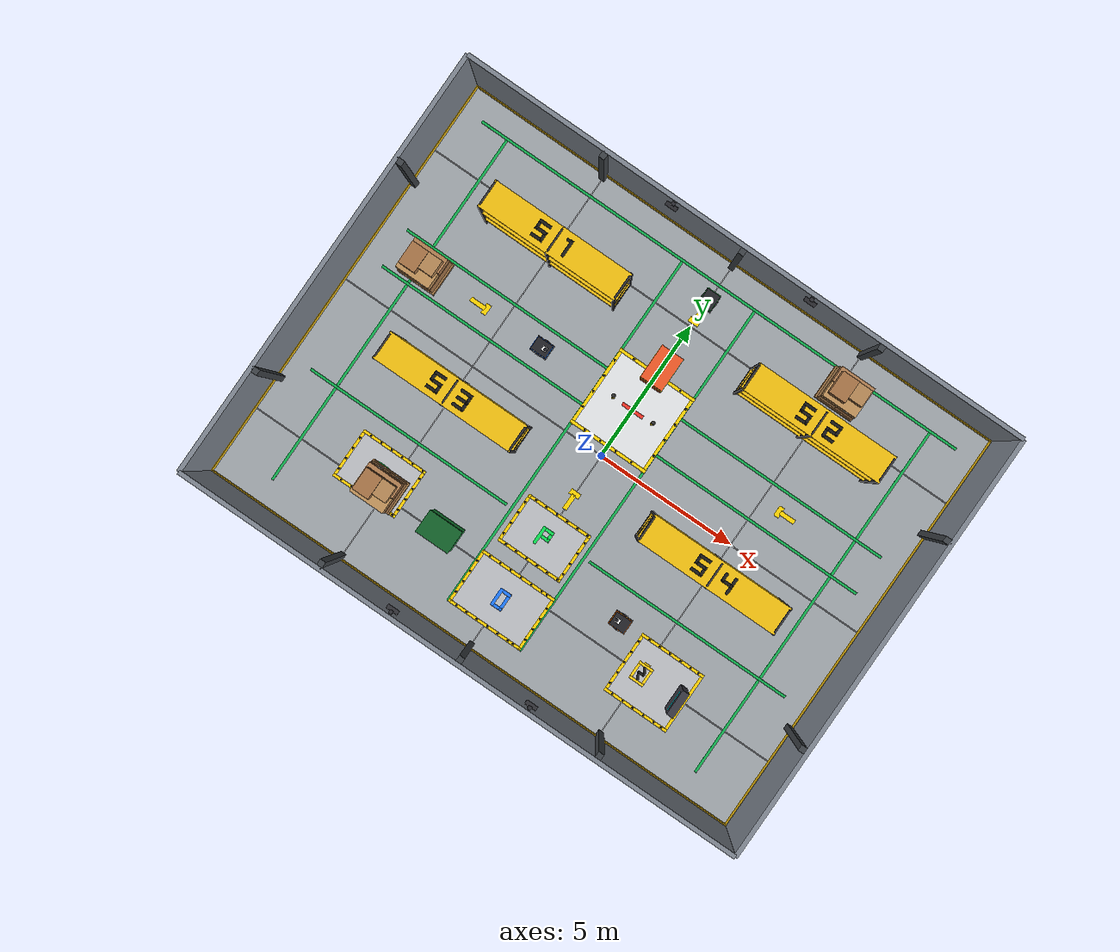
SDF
<?xml version="1.0"?>
<sdf version="1.9">
  <world name="warehouse">

    <!-- PHYSICS                                            -->
    <gravity>0 0 -9.81</gravity>
    <physics name="default_physics" type="ode">
      <max_step_size>0.001</max_step_size>
      <real_time_factor>1.0</real_time_factor>
      <real_time_update_rate>1000</real_time_update_rate>
    </physics>

    <plugin filename="gz-sim-physics-system"      name="gz::sim::systems::Physics"/>
    <plugin filename="gz-sim-sensors-system"      name="gz::sim::systems::Sensors"><render_engine>ogre2</render_engine></plugin>
    <plugin filename="gz-sim-scene-broadcaster-system" name="gz::sim::systems::SceneBroadcaster"/>
    <plugin filename="gz-sim-user-commands-system" name="gz::sim::systems::UserCommands"/>
    <plugin filename="gz-sim-contact-system"      name="gz::sim::systems::Contact"/>
    <plugin filename="gz-sim-imu-system"          name="gz::sim::systems::Imu"/>

    <!-- SCENE & LIGHTING                                  -->
    <scene>
      <ambient>0.60 0.61 0.64 1.0</ambient>
      <background>0.75 0.79 0.83 1.0</background>
      <shadows>true</shadows>
      <grid>false</grid>
    </scene>

    <!-- Primary Overhead Sun -->
    <light name="main_sun" type="directional">
      <pose>0 0 15 0 0 0</pose>
      <cast_shadows>true</cast_shadows>
      <diffuse>0.88 0.87 0.85 1.0</diffuse>
      <specular>0.28 0.28 0.28 1.0</specular>
      <direction>-0.2 0.15 -1.0</direction>
    </light>

    <!-- Warm Fill Bay Lights -->
    <light name="bay_n" type="point">
      <pose>-3.0 5.0 5.5 0 0 0</pose>
      <diffuse>0.50 0.49 0.47 1.0</diffuse>
      <attenuation><range>18</range><constant>0.4</constant><linear>0.05</linear></attenuation>
    </light>
    <light name="bay_s" type="point">
      <pose>3.0 -4.0 5.5 0 0 0</pose>
      <diffuse>0.50 0.49 0.47 1.0</diffuse>
      <attenuation><range>18</range><constant>0.4</constant><linear>0.05</linear></attenuation>
    </light>

    <!-- Wall Industrial Floodlights (Centered in wall bays at X = +-2.5m) -->
    <light name="wall_light_n1" type="point">
      <pose>-2.5 7.28 2.30 0 0 0</pose>
      <diffuse>0.38 0.38 0.35 1.0</diffuse>
      <attenuation><range>12</range><constant>0.6</constant><linear>0.08</linear></attenuation>
    </light>
    <light name="wall_light_n2" type="point">
      <pose>2.5 7.28 2.30 0 0 0</pose>
      <diffuse>0.38 0.38 0.35 1.0</diffuse>
      <attenuation><range>12</range><constant>0.6</constant><linear>0.08</linear></attenuation>
    </light>
    <light name="wall_light_s1" type="point">
      <pose>-2.5 -7.28 2.30 0 0 0</pose>
      <diffuse>0.38 0.38 0.35 1.0</diffuse>
      <attenuation><range>12</range><constant>0.6</constant><linear>0.08</linear></attenuation>
    </light>
    <light name="wall_light_s2" type="point">
      <pose>2.5 -7.28 2.30 0 0 0</pose>
      <diffuse>0.38 0.38 0.35 1.0</diffuse>
      <attenuation><range>12</range><constant>0.6</constant><linear>0.08</linear></attenuation>
    </light>

    <!-- FLOOR — Concrete with Grid Tile Lines              -->
    <model name="warehouse_floor">
      <static>true</static>
      <pose>0 0 -0.05 0 0 0</pose>
      <link name="floor_link">
        <collision name="col">
          <geometry><box><size>20.0 15.0 0.1</size></box></geometry>
          <surface><friction><ode><mu>1.0</mu><mu2>1.0</mu2></ode></friction></surface>
        </collision>
        <!-- Base Concrete Slab — slightly darker industrial grey -->
        <visual name="slab">
          <geometry><box><size>20.0 15.0 0.1</size></box></geometry>
          <material>
            <ambient>0.55 0.57 0.59 1.0</ambient>
            <diffuse>0.63 0.65 0.67 1.0</diffuse>
            <specular>0.10 0.10 0.10 1.0</specular>
          </material>
        </visual>

        <!-- === CONCRETE TILE GRID LINES (5m x 5m panels) === -->
        <!-- Horizontal lines at Y = -5, 0, +5 -->
        <visual name="grid_h1"><pose>0 -5.0 0.052 0 0 0</pose><geometry><box><size>20.0 0.03 0.002</size></box></geometry><material><ambient>0.62 0.63 0.65 1</ambient><diffuse>0.68 0.69 0.71 1</diffuse></material></visual>
        <visual name="grid_h2"><pose>0 0.0 0.052 0 0 0</pose><geometry><box><size>20.0 0.03 0.002</size></box></geometry><material><ambient>0.62 0.63 0.65 1</ambient><diffuse>0.68 0.69 0.71 1</diffuse></material></visual>
        <visual name="grid_h3"><pose>0 5.0 0.052 0 0 0</pose><geometry><box><size>20.0 0.03 0.002</size></box></geometry><material><ambient>0.62 0.63 0.65 1</ambient><diffuse>0.68 0.69 0.71 1</diffuse></material></visual>
        <!-- Vertical lines at X = -10, -5, 0, +5, +10 -->
        <visual name="grid_v1"><pose>-5.0 0 0.052 0 0 0</pose><geometry><box><size>0.03 15.0 0.002</size></box></geometry><material><ambient>0.62 0.63 0.65 1</ambient><diffuse>0.68 0.69 0.71 1</diffuse></material></visual>
        <visual name="grid_v2"><pose>0.0 0 0.052 0 0 0</pose><geometry><box><size>0.03 15.0 0.002</size></box></geometry><material><ambient>0.62 0.63 0.65 1</ambient><diffuse>0.68 0.69 0.71 1</diffuse></material></visual>
        <visual name="grid_v3"><pose>5.0 0 0.052 0 0 0</pose><geometry><box><size>0.03 15.0 0.002</size></box></geometry><material><ambient>0.62 0.63 0.65 1</ambient><diffuse>0.68 0.69 0.71 1</diffuse></material></visual>

        <!-- === GREEN SAFETY NAVIGATION LANES === -->
        <!-- Aisle 1 upper/lower -->
        <visual name="lane_a1_t"><pose>0 6.6 0.055 0 0 0</pose><geometry><box><size>18.4 0.09 0.002</size></box></geometry><material><ambient>0.04 0.52 0.22 1</ambient><diffuse>0.06 0.68 0.30 1</diffuse></material></visual>
        <visual name="lane_a1_b"><pose>0 2.4 0.055 0 0 0</pose><geometry><box><size>18.4 0.09 0.002</size></box></geometry><material><ambient>0.04 0.52 0.22 1</ambient><diffuse>0.06 0.68 0.30 1</diffuse></material></visual>
        <!-- Aisle 2 upper/lower (lower lane split around pickup P1) -->
        <visual name="lane_a2_t"><pose>0 1.0 0.055 0 0 0</pose><geometry><box><size>18.4 0.09 0.002</size></box></geometry><material><ambient>0.04 0.52 0.22 1</ambient><diffuse>0.06 0.68 0.30 1</diffuse></material></visual>
        <visual name="lane_a2_b_w"><pose>-5.4 -3.0 0.055 0 0 0</pose><geometry><box><size>7.6 0.09 0.002</size></box></geometry><material><ambient>0.04 0.52 0.22 1</ambient><diffuse>0.06 0.68 0.30 1</diffuse></material></visual>
        <visual name="lane_a2_b_e"><pose>5.4 -3.0 0.055 0 0 0</pose><geometry><box><size>7.6 0.09 0.002</size></box></geometry><material><ambient>0.04 0.52 0.22 1</ambient><diffuse>0.06 0.68 0.30 1</diffuse></material></visual>
        <!-- Cross-corridor vertical lanes -->
        <visual name="lane_cv_l"><pose>-1.4 0 0.055 0 0 0</pose><geometry><box><size>0.09 13.2 0.002</size></box></geometry><material><ambient>0.04 0.52 0.22 1</ambient><diffuse>0.06 0.68 0.30 1</diffuse></material></visual>
        <visual name="lane_cv_r"><pose>1.4 0 0.055 0 0 0</pose><geometry><box><size>0.09 13.2 0.002</size></box></geometry><material><ambient>0.04 0.52 0.22 1</ambient><diffuse>0.06 0.68 0.30 1</diffuse></material></visual>
        <!-- Outer bypass lanes -->
        <visual name="lane_bp_w"><pose>-8.2 0 0.055 0 0 0</pose><geometry><box><size>0.09 13.2 0.002</size></box></geometry><material><ambient>0.04 0.52 0.22 1</ambient><diffuse>0.06 0.68 0.30 1</diffuse></material></visual>
        <visual name="lane_bp_e"><pose>8.2 0 0.055 0 0 0</pose><geometry><box><size>0.09 13.2 0.002</size></box></geometry><material><ambient>0.04 0.52 0.22 1</ambient><diffuse>0.06 0.68 0.30 1</diffuse></material></visual>

        <!-- === PAINTED FLOOR NAVIGATION ARROWS (High-Vis Safety Yellow) === -->
        <!-- Arrow pointing SOUTH down center corridor (at Y=5.5) -->
        <visual name="arrow_n_body"><pose>0 5.5 0.056 0 0 0</pose><geometry><box><size>0.15 0.55 0.003</size></box></geometry><material><ambient>0.95 0.78 0.0 1</ambient><diffuse>1.0 0.84 0.0 1</diffuse></material></visual>
        <visual name="arrow_n_head"><pose>0 5.20 0.056 0 0 0</pose><geometry><box><size>0.36 0.18 0.003</size></box></geometry><material><ambient>0.95 0.78 0.0 1</ambient><diffuse>1.0 0.84 0.0 1</diffuse></material></visual>
        <!-- Arrow pointing NORTH up center corridor (at Y=-1.8) -->
        <visual name="arrow_s_body"><pose>0 -1.8 0.056 0 0 0</pose><geometry><box><size>0.15 0.55 0.003</size></box></geometry><material><ambient>0.95 0.78 0.0 1</ambient><diffuse>1.0 0.84 0.0 1</diffuse></material></visual>
        <visual name="arrow_s_head"><pose>0 -1.48 0.056 0 0 0</pose><geometry><box><size>0.36 0.18 0.003</size></box></geometry><material><ambient>0.95 0.78 0.0 1</ambient><diffuse>1.0 0.84 0.0 1</diffuse></material></visual>
        <!-- Arrow East along aisle 2 (at X=-6, Y=1.75) -->
        <visual name="arrow_w_body"><pose>-6.0 1.75 0.056 0 0 0</pose><geometry><box><size>0.55 0.15 0.003</size></box></geometry><material><ambient>0.95 0.78 0.0 1</ambient><diffuse>1.0 0.84 0.0 1</diffuse></material></visual>
        <visual name="arrow_w_head"><pose>-5.68 1.75 0.056 0 0 0</pose><geometry><box><size>0.18 0.36 0.003</size></box></geometry><material><ambient>0.95 0.78 0.0 1</ambient><diffuse>1.0 0.84 0.0 1</diffuse></material></visual>
        <!-- Arrow West along aisle 2 (at X=6, Y=1.75) -->
        <visual name="arrow_e_body"><pose>6.0 1.75 0.056 0 0 0</pose><geometry><box><size>0.55 0.15 0.003</size></box></geometry><material><ambient>0.95 0.78 0.0 1</ambient><diffuse>1.0 0.84 0.0 1</diffuse></material></visual>
        <visual name="arrow_e_head"><pose>5.68 1.75 0.056 0 0 0</pose><geometry><box><size>0.18 0.36 0.003</size></box></geometry><material><ambient>0.95 0.78 0.0 1</ambient><diffuse>1.0 0.84 0.0 1</diffuse></material></visual>
      </link>
    </model>

    <!-- PERIMETER WALLS WITH YELLOW SKIRTING              -->
    <model name="north_wall">
      <static>true</static>
      <pose>0 7.5 1.25 0 0 0</pose>
      <link name="link">
        <collision name="col"><geometry><box><size>20.0 0.15 2.5</size></box></geometry></collision>
        <visual name="vis"><geometry><box><size>20.0 0.15 2.5</size></box></geometry><material><ambient>0.40 0.43 0.46 1</ambient><diffuse>0.50 0.53 0.57 1</diffuse></material></visual>
        <visual name="skirt"><pose>0 -0.08 -1.15 0 0 0</pose><geometry><box><size>20.0 0.025 0.22</size></box></geometry><material><ambient>0.88 0.68 0.04 1</ambient><diffuse>0.96 0.76 0.06 1</diffuse></material></visual>
      </link>
    </model>
    <model name="south_wall">
      <static>true</static>
      <pose>0 -7.5 1.25 0 0 0</pose>
      <link name="link">
        <collision name="col"><geometry><box><size>20.0 0.15 2.5</size></box></geometry></collision>
        <visual name="vis"><geometry><box><size>20.0 0.15 2.5</size></box></geometry><material><ambient>0.40 0.43 0.46 1</ambient><diffuse>0.50 0.53 0.57 1</diffuse></material></visual>
        <visual name="skirt"><pose>0 0.08 -1.15 0 0 0</pose><geometry><box><size>20.0 0.025 0.22</size></box></geometry><material><ambient>0.88 0.68 0.04 1</ambient><diffuse>0.96 0.76 0.06 1</diffuse></material></visual>
      </link>
    </model>
    <model name="east_wall">
      <static>true</static>
      <pose>10.0 0 1.25 0 0 0</pose>
      <link name="link">
        <collision name="col"><geometry><box><size>0.15 15.0 2.5</size></box></geometry></collision>
        <visual name="vis"><geometry><box><size>0.15 15.0 2.5</size></box></geometry><material><ambient>0.40 0.43 0.46 1</ambient><diffuse>0.50 0.53 0.57 1</diffuse></material></visual>
        <visual name="skirt"><pose>-0.08 0 -1.15 0 0 0</pose><geometry><box><size>0.025 15.0 0.22</size></box></geometry><material><ambient>0.88 0.68 0.04 1</ambient><diffuse>0.96 0.76 0.06 1</diffuse></material></visual>
      </link>
    </model>
    <model name="west_wall">
      <static>true</static>
      <pose>-10.0 0 1.25 0 0 0</pose>
      <link name="link">
        <collision name="col"><geometry><box><size>0.15 15.0 2.5</size></box></geometry></collision>
        <visual name="vis"><geometry><box><size>0.15 15.0 2.5</size></box></geometry><material><ambient>0.40 0.43 0.46 1</ambient><diffuse>0.50 0.53 0.57 1</diffuse></material></visual>
        <visual name="skirt"><pose>0.08 0 -1.15 0 0 0</pose><geometry><box><size>0.025 15.0 0.22</size></box></geometry><material><ambient>0.88 0.68 0.04 1</ambient><diffuse>0.96 0.76 0.06 1</diffuse></material></visual>
      </link>
    </model>

    <!-- STRUCTURAL WALL PILLAR COLUMNS (every ~5m)         -->
    <!-- Industrial I-beam columns, anthracite steel        -->
    <!-- North wall pillars -->
    <model name="pillar_n_l"><static>true</static><pose>-5.0 7.35 1.25 0 0 0</pose><link name="link"><visual name="vis"><geometry><box><size>0.20 0.25 2.5</size></box></geometry><material><ambient>0.18 0.20 0.22 1</ambient><diffuse>0.24 0.26 0.28 1</diffuse></material></visual></link></model>
    <model name="pillar_n_r"><static>true</static><pose>5.0 7.35 1.25 0 0 0</pose><link name="link"><visual name="vis"><geometry><box><size>0.20 0.25 2.5</size></box></geometry><material><ambient>0.18 0.20 0.22 1</ambient><diffuse>0.24 0.26 0.28 1</diffuse></material></visual></link></model>
    <model name="pillar_n_c"><static>true</static><pose>0.0 7.35 1.25 0 0 0</pose><link name="link"><visual name="vis"><geometry><box><size>0.20 0.25 2.5</size></box></geometry><material><ambient>0.18 0.20 0.22 1</ambient><diffuse>0.24 0.26 0.28 1</diffuse></material></visual></link></model>
    <!-- South wall pillars -->
    <model name="pillar_s_l"><static>true</static><pose>-5.0 -7.35 1.25 0 0 0</pose><link name="link"><visual name="vis"><geometry><box><size>0.20 0.25 2.5</size></box></geometry><material><ambient>0.18 0.20 0.22 1</ambient><diffuse>0.24 0.26 0.28 1</diffuse></material></visual></link></model>
    <model name="pillar_s_r"><static>true</static><pose>5.0 -7.35 1.25 0 0 0</pose><link name="link"><visual name="vis"><geometry><box><size>0.20 0.25 2.5</size></box></geometry><material><ambient>0.18 0.20 0.22 1</ambient><diffuse>0.24 0.26 0.28 1</diffuse></material></visual></link></model>
    <model name="pillar_s_c"><static>true</static><pose>0.0 -7.35 1.25 0 0 0</pose><link name="link"><visual name="vis"><geometry><box><size>0.20 0.25 2.5</size></box></geometry><material><ambient>0.18 0.20 0.22 1</ambient><diffuse>0.24 0.26 0.28 1</diffuse></material></visual></link></model>
    <!-- East wall pillars -->
    <model name="pillar_e_n"><static>true</static><pose>9.85 3.75 1.25 0 0 0</pose><link name="link"><visual name="vis"><geometry><box><size>0.25 0.20 2.5</size></box></geometry><material><ambient>0.18 0.20 0.22 1</ambient><diffuse>0.24 0.26 0.28 1</diffuse></material></visual></link></model>
    <model name="pillar_e_s"><static>true</static><pose>9.85 -3.75 1.25 0 0 0</pose><link name="link"><visual name="vis"><geometry><box><size>0.25 0.20 2.5</size></box></geometry><material><ambient>0.18 0.20 0.22 1</ambient><diffuse>0.24 0.26 0.28 1</diffuse></material></visual></link></model>
    <!-- West wall pillars -->
    <model name="pillar_w_n"><static>true</static><pose>-9.85 3.75 1.25 0 0 0</pose><link name="link"><visual name="vis"><geometry><box><size>0.25 0.20 2.5</size></box></geometry><material><ambient>0.18 0.20 0.22 1</ambient><diffuse>0.24 0.26 0.28 1</diffuse></material></visual></link></model>
    <model name="pillar_w_s"><static>true</static><pose>-9.85 -3.75 1.25 0 0 0</pose><link name="link"><visual name="vis"><geometry><box><size>0.25 0.20 2.5</size></box></geometry><material><ambient>0.18 0.20 0.22 1</ambient><diffuse>0.24 0.26 0.28 1</diffuse></material></visual></link></model>

    <!-- Wall-Mounted Industrial LED Lighting Fixtures (Centered in wall bays at X = +-2.5m) -->
    <!-- North Wall Fixtures -->
    <model name="fixture_wall_n1"><static>true</static><pose>-2.5 7.42 2.35 0 0 0</pose>
      <link name="link">
        <visual name="bracket"><pose>0 -0.06 0 0 0 0</pose><geometry><box><size>0.12 0.12 0.08</size></box></geometry><material><ambient>0.12 0.12 0.14 1</ambient><diffuse>0.18 0.18 0.20 1</diffuse></material></visual>
        <visual name="lamp"><pose>0 -0.14 -0.02 0.3 0 0</pose><geometry><box><size>0.40 0.14 0.06</size></box></geometry><material><ambient>0.12 0.12 0.14 1</ambient><diffuse>0.18 0.18 0.20 1</diffuse></material></visual>
        <visual name="led_strip"><pose>0 -0.14 -0.05 0.3 0 0</pose><geometry><box><size>0.36 0.10 0.01</size></box></geometry><material><ambient>0.9 0.9 0.85 1</ambient><diffuse>1.0 1.0 0.9 1</diffuse><emissive>0.95 0.95 0.85 1</emissive></material></visual>
      </link></model>
    <model name="fixture_wall_n2"><static>true</static><pose>2.5 7.42 2.35 0 0 0</pose>
      <link name="link">
        <visual name="bracket"><pose>0 -0.06 0 0 0 0</pose><geometry><box><size>0.12 0.12 0.08</size></box></geometry><material><ambient>0.12 0.12 0.14 1</ambient><diffuse>0.18 0.18 0.20 1</diffuse></material></visual>
        <visual name="lamp"><pose>0 -0.14 -0.02 0.3 0 0</pose><geometry><box><size>0.40 0.14 0.06</size></box></geometry><material><ambient>0.12 0.12 0.14 1</ambient><diffuse>0.18 0.18 0.20 1</diffuse></material></visual>
        <visual name="led_strip"><pose>0 -0.14 -0.05 0.3 0 0</pose><geometry><box><size>0.36 0.10 0.01</size></box></geometry><material><ambient>0.9 0.9 0.85 1</ambient><diffuse>1.0 1.0 0.9 1</diffuse><emissive>0.95 0.95 0.85 1</emissive></material></visual>
      </link></model>
    <!-- South Wall Fixtures -->
    <model name="fixture_wall_s1"><static>true</static><pose>-2.5 -7.42 2.35 0 0 3.14159</pose>
      <link name="link">
        <visual name="bracket"><pose>0 -0.06 0 0 0 0</pose><geometry><box><size>0.12 0.12 0.08</size></box></geometry><material><ambient>0.12 0.12 0.14 1</ambient><diffuse>0.18 0.18 0.20 1</diffuse></material></visual>
        <visual name="lamp"><pose>0 -0.14 -0.02 0.3 0 0</pose><geometry><box><size>0.40 0.14 0.06</size></box></geometry><material><ambient>0.12 0.12 0.14 1</ambient><diffuse>0.18 0.18 0.20 1</diffuse></material></visual>
        <visual name="led_strip"><pose>0 -0.14 -0.05 0.3 0 0</pose><geometry><box><size>0.36 0.10 0.01</size></box></geometry><material><ambient>0.9 0.9 0.85 1</ambient><diffuse>1.0 1.0 0.9 1</diffuse><emissive>0.95 0.95 0.85 1</emissive></material></visual>
      </link></model>
    <model name="fixture_wall_s2"><static>true</static><pose>2.5 -7.42 2.35 0 0 3.14159</pose>
      <link name="link">
        <visual name="bracket"><pose>0 -0.06 0 0 0 0</pose><geometry><box><size>0.12 0.12 0.08</size></box></geometry><material><ambient>0.12 0.12 0.14 1</ambient><diffuse>0.18 0.18 0.20 1</diffuse></material></visual>
        <visual name="lamp"><pose>0 -0.14 -0.02 0.3 0 0</pose><geometry><box><size>0.40 0.14 0.06</size></box></geometry><material><ambient>0.12 0.12 0.14 1</ambient><diffuse>0.18 0.18 0.20 1</diffuse></material></visual>
        <visual name="led_strip"><pose>0 -0.14 -0.05 0.3 0 0</pose><geometry><box><size>0.36 0.10 0.01</size></box></geometry><material><ambient>0.9 0.9 0.85 1</ambient><diffuse>1.0 1.0 0.9 1</diffuse><emissive>0.95 0.95 0.85 1</emissive></material></visual>
      </link></model>

    <!-- INDUSTRIAL RACK SHELVING (NW, NE, SW, SE)         -->
    <include>
      <uri>file:///Users/itz_ats_sama/amr_project/simulation/models/shelf</uri>
      <name>shelf_rack_NW</name>
      <pose>-4.8 4.5 0 0 0 0</pose>
    </include>
    <include>
      <uri>file:///Users/itz_ats_sama/amr_project/simulation/models/shelf</uri>
      <name>shelf_rack_NE</name>
      <pose>4.8 4.5 0 0 0 0</pose>
    </include>
    <include>
      <uri>file:///Users/itz_ats_sama/amr_project/simulation/models/shelf</uri>
      <name>shelf_rack_SW</name>
      <pose>-4.8 -1.0 0 0 0 0</pose>
    </include>
    <include>
      <uri>file:///Users/itz_ats_sama/amr_project/simulation/models/shelf</uri>
      <name>shelf_rack_SE</name>
      <pose>4.8 -1.0 0 0 0 0</pose>
    </include>

    <!-- LOGISTICS PROPS                                    -->
    <include>
      <uri>file:///Users/itz_ats_sama/amr_project/simulation/models/pallet_stack</uri>
      <name>pallet_tower_1</name>
      <pose>-5.2 -4.8 0 0 0 0</pose>
    </include>
    <include>
      <uri>file:///Users/itz_ats_sama/amr_project/simulation/models/pallet_stack</uri>
      <name>pallet_tower_2</name>
      <pose>5.2 6.0 0 0 0 0</pose>
    </include>
    <!-- Extra scattered box near NW aisle entrance -->
    <include>
      <uri>file:///Users/itz_ats_sama/amr_project/simulation/models/pallet_stack</uri>
      <name>pallet_tower_3</name>
      <pose>-8.0 1.75 0 0 0 0</pose>
    </include>
    <include>
      <uri>file:///Users/itz_ats_sama/amr_project/simulation/models/dumpster</uri>
      <name>green_dumpster_container</name>
      <pose>-2.8 -4.8 0 0 0 0</pose>
    </include>

    <!-- INTERSECTION I1 — PROMINENT CONFLICT ZONE          -->
    <model name="intersection_I1_marker">
      <static>true</static>
      <pose>0 1.75 0.005 0 0 0</pose>
      <link name="link">
        <!-- Bright contrast base zone -->
        <visual name="marker_zone">
          <geometry><box><size>2.7 2.7 0.005</size></box></geometry>
          <material><ambient>0.82 0.83 0.84 1.0</ambient><diffuse>0.90 0.91 0.92 1.0</diffuse></material>
        </visual>

        <!-- Yellow outer frame -->
        <visual name="frame_n"><pose>0 1.38 0.006 0 0 0</pose><geometry><box><size>2.9 0.11 0.006</size></box></geometry><material><ambient>0.95 0.78 0.0 1</ambient><diffuse>1.0 0.84 0.0 1</diffuse></material></visual>
        <visual name="frame_s"><pose>0 -1.38 0.006 0 0 0</pose><geometry><box><size>2.9 0.11 0.006</size></box></geometry><material><ambient>0.95 0.78 0.0 1</ambient><diffuse>1.0 0.84 0.0 1</diffuse></material></visual>
        <visual name="frame_e"><pose>1.38 0 0.006 0 0 0</pose><geometry><box><size>0.11 2.9 0.006</size></box></geometry><material><ambient>0.95 0.78 0.0 1</ambient><diffuse>1.0 0.84 0.0 1</diffuse></material></visual>
        <visual name="frame_w"><pose>-1.38 0 0.006 0 0 0</pose><geometry><box><size>0.11 2.9 0.006</size></box></geometry><material><ambient>0.95 0.78 0.0 1</ambient><diffuse>1.0 0.84 0.0 1</diffuse></material></visual>

        <!-- Black diagonal hazard stripes at 45° on all 4 sides -->
        <visual name="hz_n1"><pose>-0.9 1.38 0.007 0 0 0.7854</pose><geometry><box><size>0.065 0.065 0.006</size></box></geometry><material><ambient>0.08 0.08 0.08 1</ambient><diffuse>0.12 0.12 0.12 1</diffuse></material></visual>
        <visual name="hz_n2"><pose>-0.3 1.38 0.007 0 0 0.7854</pose><geometry><box><size>0.065 0.065 0.006</size></box></geometry><material><ambient>0.08 0.08 0.08 1</ambient><diffuse>0.12 0.12 0.12 1</diffuse></material></visual>
        <visual name="hz_n3"><pose>0.3 1.38 0.007 0 0 0.7854</pose><geometry><box><size>0.065 0.065 0.006</size></box></geometry><material><ambient>0.08 0.08 0.08 1</ambient><diffuse>0.12 0.12 0.12 1</diffuse></material></visual>
        <visual name="hz_n4"><pose>0.9 1.38 0.007 0 0 0.7854</pose><geometry><box><size>0.065 0.065 0.006</size></box></geometry><material><ambient>0.08 0.08 0.08 1</ambient><diffuse>0.12 0.12 0.12 1</diffuse></material></visual>
        <visual name="hz_s1"><pose>-0.9 -1.38 0.007 0 0 0.7854</pose><geometry><box><size>0.065 0.065 0.006</size></box></geometry><material><ambient>0.08 0.08 0.08 1</ambient><diffuse>0.12 0.12 0.12 1</diffuse></material></visual>
        <visual name="hz_s2"><pose>-0.3 -1.38 0.007 0 0 0.7854</pose><geometry><box><size>0.065 0.065 0.006</size></box></geometry><material><ambient>0.08 0.08 0.08 1</ambient><diffuse>0.12 0.12 0.12 1</diffuse></material></visual>
        <visual name="hz_s3"><pose>0.3 -1.38 0.007 0 0 0.7854</pose><geometry><box><size>0.065 0.065 0.006</size></box></geometry><material><ambient>0.08 0.08 0.08 1</ambient><diffuse>0.12 0.12 0.12 1</diffuse></material></visual>
        <visual name="hz_s4"><pose>0.9 -1.38 0.007 0 0 0.7854</pose><geometry><box><size>0.065 0.065 0.006</size></box></geometry><material><ambient>0.08 0.08 0.08 1</ambient><diffuse>0.12 0.12 0.12 1</diffuse></material></visual>
        <visual name="hz_e1"><pose>1.38 -0.8 0.007 0 0 0.7854</pose><geometry><box><size>0.065 0.065 0.006</size></box></geometry><material><ambient>0.08 0.08 0.08 1</ambient><diffuse>0.12 0.12 0.12 1</diffuse></material></visual>
        <visual name="hz_e2"><pose>1.38 -0.2 0.007 0 0 0.7854</pose><geometry><box><size>0.065 0.065 0.006</size></box></geometry><material><ambient>0.08 0.08 0.08 1</ambient><diffuse>0.12 0.12 0.12 1</diffuse></material></visual>
        <visual name="hz_e3"><pose>1.38 0.4 0.007 0 0 0.7854</pose><geometry><box><size>0.065 0.065 0.006</size></box></geometry><material><ambient>0.08 0.08 0.08 1</ambient><diffuse>0.12 0.12 0.12 1</diffuse></material></visual>
        <visual name="hz_e4"><pose>1.38 1.0 0.007 0 0 0.7854</pose><geometry><box><size>0.065 0.065 0.006</size></box></geometry><material><ambient>0.08 0.08 0.08 1</ambient><diffuse>0.12 0.12 0.12 1</diffuse></material></visual>
        <visual name="hz_w1"><pose>-1.38 -0.8 0.007 0 0 0.7854</pose><geometry><box><size>0.065 0.065 0.006</size></box></geometry><material><ambient>0.08 0.08 0.08 1</ambient><diffuse>0.12 0.12 0.12 1</diffuse></material></visual>
        <visual name="hz_w2"><pose>-1.38 -0.2 0.007 0 0 0.7854</pose><geometry><box><size>0.065 0.065 0.006</size></box></geometry><material><ambient>0.08 0.08 0.08 1</ambient><diffuse>0.12 0.12 0.12 1</diffuse></material></visual>
        <visual name="hz_w3"><pose>-1.38 0.4 0.007 0 0 0.7854</pose><geometry><box><size>0.065 0.065 0.006</size></box></geometry><material><ambient>0.08 0.08 0.08 1</ambient><diffuse>0.12 0.12 0.12 1</diffuse></material></visual>
        <visual name="hz_w4"><pose>-1.38 1.0 0.007 0 0 0.7854</pose><geometry><box><size>0.065 0.065 0.006</size></box></geometry><material><ambient>0.08 0.08 0.08 1</ambient><diffuse>0.12 0.12 0.12 1</diffuse></material></visual>

        <!-- "I1" zone label — flush painted red cross marker -->
        <visual name="i1_cross_h"><pose>0 0 0.005 0 0 0</pose><geometry><box><size>0.80 0.12 0.0015</size></box></geometry><material><ambient>0.85 0.15 0.10 1</ambient><diffuse>0.95 0.2 0.15 1</diffuse></material></visual>
        <visual name="i1_cross_v"><pose>0 0 0.005 0 0 0</pose><geometry><box><size>0.12 0.80 0.0015</size></box></geometry><material><ambient>0.85 0.15 0.10 1</ambient><diffuse>0.95 0.2 0.15 1</diffuse></material></visual>
      </link>
    </model>

    <!-- Choke Bollards at I1 -->
    <model name="bollard_l">
      <static>true</static><pose>-0.75 1.75 0.45 0 0 0</pose>
      <link name="link">
        <collision name="col"><geometry><cylinder><radius>0.06</radius><length>0.9</length></cylinder></geometry></collision>
        <visual name="vis"><geometry><cylinder><radius>0.06</radius><length>0.9</length></cylinder></geometry><material><ambient>0.95 0.78 0.0 1</ambient><diffuse>1.0 0.84 0.0 1</diffuse></material></visual>
        <visual name="cap"><pose>0 0 0.46 0 0 0</pose><geometry><sphere><radius>0.065</radius></sphere></geometry><material><ambient>0.15 0.15 0.15 1</ambient><diffuse>0.20 0.20 0.20 1</diffuse></material></visual>
      </link>
    </model>
    <model name="bollard_r">
      <static>true</static><pose>0.75 1.75 0.45 0 0 0</pose>
      <link name="link">
        <collision name="col"><geometry><cylinder><radius>0.06</radius><length>0.9</length></cylinder></geometry></collision>
        <visual name="vis"><geometry><cylinder><radius>0.06</radius><length>0.9</length></cylinder></geometry><material><ambient>0.95 0.78 0.0 1</ambient><diffuse>1.0 0.84 0.0 1</diffuse></material></visual>
        <visual name="cap"><pose>0 0 0.46 0 0 0</pose><geometry><sphere><radius>0.065</radius></sphere></geometry><material><ambient>0.15 0.15 0.15 1</ambient><diffuse>0.20 0.20 0.20 1</diffuse></material></visual>
      </link>
    </model>

    <!-- ZONE LETTER SIGNS (floor) + SHELF NUMBER SIGNS (top) -->
    <!-- Flush painted stencils (1mm thickness, zero shadow)  -->
    <!-- P=Emerald Green | D=Royal Blue | S1-S4=Black         -->

    <model name="sign_P1"><static>true</static><pose>0.0 -3.2 0.006 0 0 0</pose>
      <link name="link">
        <visual name="p1_sv"><pose>-0.18 0 0 0 0 0</pose><geometry><box><size>0.11 0.64 0.0015</size></box></geometry><material><ambient>0.02 0.70 0.25 1</ambient><diffuse>0.04 0.88 0.32 1</diffuse></material></visual>
        <visual name="p1_th"><pose>0.02 0.265 0 0 0 0</pose><geometry><box><size>0.31 0.11 0.0015</size></box></geometry><material><ambient>0.02 0.70 0.25 1</ambient><diffuse>0.04 0.88 0.32 1</diffuse></material></visual>
        <visual name="p1_mh"><pose>0.02 0.00 0 0 0 0</pose><geometry><box><size>0.31 0.11 0.0015</size></box></geometry><material><ambient>0.02 0.70 0.25 1</ambient><diffuse>0.04 0.88 0.32 1</diffuse></material></visual>
        <visual name="p1_rv"><pose>0.13 0.132 0 0 0 0</pose><geometry><box><size>0.11 0.375 0.0015</size></box></geometry><material><ambient>0.02 0.70 0.25 1</ambient><diffuse>0.04 0.88 0.32 1</diffuse></material></visual>
      </link></model>

    <model name="sign_P2"><static>true</static><pose>-5.5 -4.5 0.006 0 0 0</pose>
      <link name="link">
        <visual name="p2_sv"><pose>-0.18 0 0 0 0 0</pose><geometry><box><size>0.11 0.64 0.0015</size></box></geometry><material><ambient>0.02 0.70 0.25 1</ambient><diffuse>0.04 0.88 0.32 1</diffuse></material></visual>
        <visual name="p2_th"><pose>0.02 0.265 0 0 0 0</pose><geometry><box><size>0.31 0.11 0.0015</size></box></geometry><material><ambient>0.02 0.70 0.25 1</ambient><diffuse>0.04 0.88 0.32 1</diffuse></material></visual>
        <visual name="p2_mh"><pose>0.02 0.00 0 0 0 0</pose><geometry><box><size>0.31 0.11 0.0015</size></box></geometry><material><ambient>0.02 0.70 0.25 1</ambient><diffuse>0.04 0.88 0.32 1</diffuse></material></visual>
        <visual name="p2_rv"><pose>0.13 0.132 0 0 0 0</pose><geometry><box><size>0.11 0.375 0.0015</size></box></geometry><material><ambient>0.02 0.70 0.25 1</ambient><diffuse>0.04 0.88 0.32 1</diffuse></material></visual>
      </link></model>

    <model name="sign_D1"><static>true</static><pose>0.0 -5.6 0.006 0 0 0</pose>
      <link name="link">
        <visual name="d1_sv"><pose>-0.18 0 0 0 0 0</pose><geometry><box><size>0.11 0.64 0.0015</size></box></geometry><material><ambient>0.08 0.38 0.90 1</ambient><diffuse>0.12 0.48 1.0 1</diffuse></material></visual>
        <visual name="d1_th"><pose>0.02 0.265 0 0 0 0</pose><geometry><box><size>0.31 0.11 0.0015</size></box></geometry><material><ambient>0.08 0.38 0.90 1</ambient><diffuse>0.12 0.48 1.0 1</diffuse></material></visual>
        <visual name="d1_bh"><pose>0.02 -0.265 0 0 0 0</pose><geometry><box><size>0.31 0.11 0.0015</size></box></geometry><material><ambient>0.08 0.38 0.90 1</ambient><diffuse>0.12 0.48 1.0 1</diffuse></material></visual>
        <visual name="d1_rv"><pose>0.13 0 0 0 0 0</pose><geometry><box><size>0.11 0.64 0.0015</size></box></geometry><material><ambient>0.08 0.38 0.90 1</ambient><diffuse>0.12 0.48 1.0 1</diffuse></material></visual>
      </link></model>

    <!-- BATTERY SIGN: Centered inside charging bay pad (5.0, -5.0), flush on pad -->
    <model name="sign_CHARGE"><static>true</static><pose>5.0 -5.0 0.006 0 0 0</pose>
      <link name="link">
        <!-- Battery Outer Stencil Frame (Golden Yellow) -->
        <visual name="bt_top"><pose>0 0.28 0 0 0 0</pose><geometry><box><size>0.54 0.09 0.0015</size></box></geometry><material><ambient>0.92 0.72 0.0 1</ambient><diffuse>1.0 0.82 0.05 1</diffuse></material></visual>
        <visual name="bt_bot"><pose>0 -0.28 0 0 0 0</pose><geometry><box><size>0.54 0.09 0.0015</size></box></geometry><material><ambient>0.92 0.72 0.0 1</ambient><diffuse>1.0 0.82 0.05 1</diffuse></material></visual>
        <visual name="bt_lft"><pose>-0.225 0 0 0 0 0</pose><geometry><box><size>0.09 0.47 0.0015</size></box></geometry><material><ambient>0.92 0.72 0.0 1</ambient><diffuse>1.0 0.82 0.05 1</diffuse></material></visual>
        <visual name="bt_rgt"><pose>0.225 0 0 0 0 0</pose><geometry><box><size>0.09 0.47 0.0015</size></box></geometry><material><ambient>0.92 0.72 0.0 1</ambient><diffuse>1.0 0.82 0.05 1</diffuse></material></visual>
        <visual name="bt_cap"><pose>0 0.35 0 0 0 0</pose><geometry><box><size>0.22 0.06 0.0015</size></box></geometry><material><ambient>0.92 0.72 0.0 1</ambient><diffuse>1.0 0.82 0.05 1</diffuse></material></visual>
        <!-- Connected Black Lightning Bolt -->
        <visual name="bt_bolt_u"><pose>0.045 0.11 0.0005 0 0 0.55</pose><geometry><box><size>0.08 0.28 0.0015</size></box></geometry><material><ambient>0.06 0.06 0.06 1</ambient><diffuse>0.10 0.10 0.10 1</diffuse></material></visual>
        <visual name="bt_bolt_m"><pose>0 0 0.0005 0 0 0</pose><geometry><box><size>0.24 0.08 0.0015</size></box></geometry><material><ambient>0.06 0.06 0.06 1</ambient><diffuse>0.10 0.10 0.10 1</diffuse></material></visual>
        <visual name="bt_bolt_l"><pose>-0.045 -0.11 0.0005 0 0 0.55</pose><geometry><box><size>0.08 0.28 0.0015</size></box></geometry><material><ambient>0.06 0.06 0.06 1</ambient><diffuse>0.10 0.10 0.10 1</diffuse></material></visual>
      </link></model>

    <!-- S1-S4: BOLD SOLID BLACK flush on TOP of Yellow Shelves (z=2.201) -->
    <!-- Flush stencil paint, zero floating shadow                       -->
    <model name="sign_S1"><static>true</static><pose>-4.8 4.5 2.201 0 0 0</pose>
      <link name="link">
        <!-- S letter -->
        <visual name="s1_s_top"><pose>-0.50 0.24 0 0 0 0</pose><geometry><box><size>0.42 0.10 0.0015</size></box></geometry><material><ambient>0.06 0.06 0.06 1</ambient><diffuse>0.10 0.10 0.10 1</diffuse></material></visual>
        <visual name="s1_s_tlv"><pose>-0.66 0.12 0 0 0 0</pose><geometry><box><size>0.10 0.28 0.0015</size></box></geometry><material><ambient>0.06 0.06 0.06 1</ambient><diffuse>0.10 0.10 0.10 1</diffuse></material></visual>
        <visual name="s1_s_mid"><pose>-0.50 0 0 0 0 0</pose><geometry><box><size>0.42 0.10 0.0015</size></box></geometry><material><ambient>0.06 0.06 0.06 1</ambient><diffuse>0.10 0.10 0.10 1</diffuse></material></visual>
        <visual name="s1_s_brv"><pose>-0.34 -0.12 0 0 0 0</pose><geometry><box><size>0.10 0.28 0.0015</size></box></geometry><material><ambient>0.06 0.06 0.06 1</ambient><diffuse>0.10 0.10 0.10 1</diffuse></material></visual>
        <visual name="s1_s_bot"><pose>-0.50 -0.24 0 0 0 0</pose><geometry><box><size>0.42 0.10 0.0015</size></box></geometry><material><ambient>0.06 0.06 0.06 1</ambient><diffuse>0.10 0.10 0.10 1</diffuse></material></visual>
        <!-- 1 digit -->
        <visual name="s1_1_v"><pose>0.45 0 0 0 0 0</pose><geometry><box><size>0.10 0.58 0.0015</size></box></geometry><material><ambient>0.06 0.06 0.06 1</ambient><diffuse>0.10 0.10 0.10 1</diffuse></material></visual>
        <visual name="s1_1_sf"><pose>0.37 0.23 0 0 0 0</pose><geometry><box><size>0.18 0.08 0.0015</size></box></geometry><material><ambient>0.06 0.06 0.06 1</ambient><diffuse>0.10 0.10 0.10 1</diffuse></material></visual>
      </link></model>

    <model name="sign_S2"><static>true</static><pose>4.8 4.5 2.201 0 0 0</pose>
      <link name="link">
        <!-- S letter -->
        <visual name="s2_s_top"><pose>-0.50 0.24 0 0 0 0</pose><geometry><box><size>0.42 0.10 0.0015</size></box></geometry><material><ambient>0.06 0.06 0.06 1</ambient><diffuse>0.10 0.10 0.10 1</diffuse></material></visual>
        <visual name="s2_s_tlv"><pose>-0.66 0.12 0 0 0 0</pose><geometry><box><size>0.10 0.28 0.0015</size></box></geometry><material><ambient>0.06 0.06 0.06 1</ambient><diffuse>0.10 0.10 0.10 1</diffuse></material></visual>
        <visual name="s2_s_mid"><pose>-0.50 0 0 0 0 0</pose><geometry><box><size>0.42 0.10 0.0015</size></box></geometry><material><ambient>0.06 0.06 0.06 1</ambient><diffuse>0.10 0.10 0.10 1</diffuse></material></visual>
        <visual name="s2_s_brv"><pose>-0.34 -0.12 0 0 0 0</pose><geometry><box><size>0.10 0.28 0.0015</size></box></geometry><material><ambient>0.06 0.06 0.06 1</ambient><diffuse>0.10 0.10 0.10 1</diffuse></material></visual>
        <visual name="s2_s_bot"><pose>-0.50 -0.24 0 0 0 0</pose><geometry><box><size>0.42 0.10 0.0015</size></box></geometry><material><ambient>0.06 0.06 0.06 1</ambient><diffuse>0.10 0.10 0.10 1</diffuse></material></visual>
        <!-- 2 digit -->
        <visual name="s2_2_th"><pose>0.45 0.24 0 0 0 0</pose><geometry><box><size>0.42 0.10 0.0015</size></box></geometry><material><ambient>0.06 0.06 0.06 1</ambient><diffuse>0.10 0.10 0.10 1</diffuse></material></visual>
        <visual name="s2_2_trv"><pose>0.61 0.12 0 0 0 0</pose><geometry><box><size>0.10 0.28 0.0015</size></box></geometry><material><ambient>0.06 0.06 0.06 1</ambient><diffuse>0.10 0.10 0.10 1</diffuse></material></visual>
        <visual name="s2_2_mh"><pose>0.45 0 0 0 0 0</pose><geometry><box><size>0.42 0.10 0.0015</size></box></geometry><material><ambient>0.06 0.06 0.06 1</ambient><diffuse>0.10 0.10 0.10 1</diffuse></material></visual>
        <visual name="s2_2_blv"><pose>0.29 -0.12 0 0 0 0</pose><geometry><box><size>0.10 0.28 0.0015</size></box></geometry><material><ambient>0.06 0.06 0.06 1</ambient><diffuse>0.10 0.10 0.10 1</diffuse></material></visual>
        <visual name="s2_2_bh"><pose>0.45 -0.24 0 0 0 0</pose><geometry><box><size>0.42 0.10 0.0015</size></box></geometry><material><ambient>0.06 0.06 0.06 1</ambient><diffuse>0.10 0.10 0.10 1</diffuse></material></visual>
      </link></model>

    <model name="sign_S3"><static>true</static><pose>-4.8 -1.0 2.201 0 0 0</pose>
      <link name="link">
        <!-- S letter -->
        <visual name="s3_s_top"><pose>-0.50 0.24 0 0 0 0</pose><geometry><box><size>0.42 0.10 0.0015</size></box></geometry><material><ambient>0.06 0.06 0.06 1</ambient><diffuse>0.10 0.10 0.10 1</diffuse></material></visual>
        <visual name="s3_s_tlv"><pose>-0.66 0.12 0 0 0 0</pose><geometry><box><size>0.10 0.28 0.0015</size></box></geometry><material><ambient>0.06 0.06 0.06 1</ambient><diffuse>0.10 0.10 0.10 1</diffuse></material></visual>
        <visual name="s3_s_mid"><pose>-0.50 0 0 0 0 0</pose><geometry><box><size>0.42 0.10 0.0015</size></box></geometry><material><ambient>0.06 0.06 0.06 1</ambient><diffuse>0.10 0.10 0.10 1</diffuse></material></visual>
        <visual name="s3_s_brv"><pose>-0.34 -0.12 0 0 0 0</pose><geometry><box><size>0.10 0.28 0.0015</size></box></geometry><material><ambient>0.06 0.06 0.06 1</ambient><diffuse>0.10 0.10 0.10 1</diffuse></material></visual>
        <visual name="s3_s_bot"><pose>-0.50 -0.24 0 0 0 0</pose><geometry><box><size>0.42 0.10 0.0015</size></box></geometry><material><ambient>0.06 0.06 0.06 1</ambient><diffuse>0.10 0.10 0.10 1</diffuse></material></visual>
        <!-- 3 digit -->
        <visual name="s3_3_th"><pose>0.45 0.24 0 0 0 0</pose><geometry><box><size>0.42 0.10 0.0015</size></box></geometry><material><ambient>0.06 0.06 0.06 1</ambient><diffuse>0.10 0.10 0.10 1</diffuse></material></visual>
        <visual name="s3_3_trv"><pose>0.61 0.12 0 0 0 0</pose><geometry><box><size>0.10 0.28 0.0015</size></box></geometry><material><ambient>0.06 0.06 0.06 1</ambient><diffuse>0.10 0.10 0.10 1</diffuse></material></visual>
        <visual name="s3_3_mh"><pose>0.45 0 0 0 0 0</pose><geometry><box><size>0.42 0.10 0.0015</size></box></geometry><material><ambient>0.06 0.06 0.06 1</ambient><diffuse>0.10 0.10 0.10 1</diffuse></material></visual>
        <visual name="s3_3_brv"><pose>0.61 -0.12 0 0 0 0</pose><geometry><box><size>0.10 0.28 0.0015</size></box></geometry><material><ambient>0.06 0.06 0.06 1</ambient><diffuse>0.10 0.10 0.10 1</diffuse></material></visual>
        <visual name="s3_3_bh"><pose>0.45 -0.24 0 0 0 0</pose><geometry><box><size>0.42 0.10 0.0015</size></box></geometry><material><ambient>0.06 0.06 0.06 1</ambient><diffuse>0.10 0.10 0.10 1</diffuse></material></visual>
      </link></model>

    <model name="sign_S4"><static>true</static><pose>4.8 -1.0 2.201 0 0 0</pose>
      <link name="link">
        <!-- S letter -->
        <visual name="s4_s_top"><pose>-0.50 0.24 0 0 0 0</pose><geometry><box><size>0.42 0.10 0.0015</size></box></geometry><material><ambient>0.06 0.06 0.06 1</ambient><diffuse>0.10 0.10 0.10 1</diffuse></material></visual>
        <visual name="s4_s_tlv"><pose>-0.66 0.12 0 0 0 0</pose><geometry><box><size>0.10 0.28 0.0015</size></box></geometry><material><ambient>0.06 0.06 0.06 1</ambient><diffuse>0.10 0.10 0.10 1</diffuse></material></visual>
        <visual name="s4_s_mid"><pose>-0.50 0 0 0 0 0</pose><geometry><box><size>0.42 0.10 0.0015</size></box></geometry><material><ambient>0.06 0.06 0.06 1</ambient><diffuse>0.10 0.10 0.10 1</diffuse></material></visual>
        <visual name="s4_s_brv"><pose>-0.34 -0.12 0 0 0 0</pose><geometry><box><size>0.10 0.28 0.0015</size></box></geometry><material><ambient>0.06 0.06 0.06 1</ambient><diffuse>0.10 0.10 0.10 1</diffuse></material></visual>
        <visual name="s4_s_bot"><pose>-0.50 -0.24 0 0 0 0</pose><geometry><box><size>0.42 0.10 0.0015</size></box></geometry><material><ambient>0.06 0.06 0.06 1</ambient><diffuse>0.10 0.10 0.10 1</diffuse></material></visual>
        <!-- 4 digit -->
        <visual name="s4_4_tlv"><pose>0.29 0.12 0 0 0 0</pose><geometry><box><size>0.10 0.28 0.0015</size></box></geometry><material><ambient>0.06 0.06 0.06 1</ambient><diffuse>0.10 0.10 0.10 1</diffuse></material></visual>
        <visual name="s4_4_mh"><pose>0.45 0 0 0 0 0</pose><geometry><box><size>0.42 0.10 0.0015</size></box></geometry><material><ambient>0.06 0.06 0.06 1</ambient><diffuse>0.10 0.10 0.10 1</diffuse></material></visual>
        <visual name="s4_4_rfv"><pose>0.61 0 0 0 0 0</pose><geometry><box><size>0.10 0.58 0.0015</size></box></geometry><material><ambient>0.06 0.06 0.06 1</ambient><diffuse>0.10 0.10 0.10 1</diffuse></material></visual>
      </link></model>

    <!-- STATIONS & ZONES                                   -->
    <include>
      <uri>file:///Users/itz_ats_sama/amr_project/simulation/models/pickup_station</uri>
      <name>pickup_P1</name>
      <pose>0 -3.2 0 0 0 0</pose>
    </include>
    <include>
      <uri>file:///Users/itz_ats_sama/amr_project/simulation/models/pickup_station</uri>
      <name>pickup_P2</name>
      <pose>-5.5 -4.5 0 0 0 0</pose>
    </include>
    <include>
      <uri>file:///Users/itz_ats_sama/amr_project/simulation/models/drop_station</uri>
      <name>drop_pack_D1</name>
      <pose>0 -5.6 0 0 0 0</pose>
    </include>
    <include>
      <uri>file:///Users/itz_ats_sama/amr_project/simulation/models/charging_station</uri>
      <name>charging_bay</name>
      <pose>5.5 -5.0 0 0 0 0</pose>
    </include>

    <!-- BLOCKED AISLE OBSTACLE                            -->
    <include>
      <uri>file:///Users/itz_ats_sama/amr_project/simulation/models/obstacle</uri>
      <name>blocked_aisle_obstacle</name>
      <pose>0 3.3 0 0 0 0</pose>
    </include>

    <!-- THREE DISTINCT-COLOR AMRs                          -->
    <!--   A = BLUE  | B = GREEN | C = ORANGE              -->
    <include>
      <uri>file:///Users/itz_ats_sama/amr_project/simulation/models/amr_blue</uri>
      <name>amr_a</name>
      <pose>-3.5 1.75 0.05 0 0 0</pose>
    </include>
    <include>
      <uri>file:///Users/itz_ats_sama/amr_project/simulation/models/amr_green</uri>
      <name>amr_b</name>
      <pose>0 6.0 0.05 0 0 -1.570796</pose>
    </include>
    <include>
      <uri>file:///Users/itz_ats_sama/amr_project/simulation/models/amr_orange</uri>
      <name>amr_c</name>
      <pose>3.5 -4.0 0.05 0 0 3.141592</pose>
    </include>

  </world>
</sdf>

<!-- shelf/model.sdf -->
<sdf version="1.9">
  <model name="shelf">
    <static>true</static>

    <!-- Single efficient bounding collision for ODE physics -->
    <link name="shelf_link">
      <collision name="shelf_collision">
        <geometry>
          <box>
            <size>5.0 1.0 2.2</size>
          </box>
        </geometry>
      </collision>

      <!-- INDUSTRIAL RACK STRUCTURAL FRAME             -->

      <!-- 6 Vertical Structural Uprights (Dark Anthracite Steel) -->
      <visual name="col_fl"><pose>-2.45 0.45 1.1 0 0 0</pose><geometry><box><size>0.08 0.08 2.2</size></box></geometry><material><ambient>0.12 0.12 0.14 1</ambient><diffuse>0.18 0.18 0.20 1</diffuse></material></visual>
      <visual name="col_fr"><pose>2.45 0.45 1.1 0 0 0</pose><geometry><box><size>0.08 0.08 2.2</size></box></geometry><material><ambient>0.12 0.12 0.14 1</ambient><diffuse>0.18 0.18 0.20 1</diffuse></material></visual>
      <visual name="col_rl"><pose>-2.45 -0.45 1.1 0 0 0</pose><geometry><box><size>0.08 0.08 2.2</size></box></geometry><material><ambient>0.12 0.12 0.14 1</ambient><diffuse>0.18 0.18 0.20 1</diffuse></material></visual>
      <visual name="col_rr"><pose>2.45 -0.45 1.1 0 0 0</pose><geometry><box><size>0.08 0.08 2.2</size></box></geometry><material><ambient>0.12 0.12 0.14 1</ambient><diffuse>0.18 0.18 0.20 1</diffuse></material></visual>
      <visual name="col_mc_f"><pose>0 0.45 1.1 0 0 0</pose><geometry><box><size>0.08 0.08 2.2</size></box></geometry><material><ambient>0.12 0.12 0.14 1</ambient><diffuse>0.18 0.18 0.20 1</diffuse></material></visual>
      <visual name="col_mc_r"><pose>0 -0.45 1.1 0 0 0</pose><geometry><box><size>0.08 0.08 2.2</size></box></geometry><material><ambient>0.12 0.12 0.14 1</ambient><diffuse>0.18 0.18 0.20 1</diffuse></material></visual>

      <!-- Frame Side Horizontal Cross-Ties (Connecting front & rear columns) -->
      <!-- Left End Frame Ties -->
      <visual name="tie_l_bot"><pose>-2.45 0 0.15 0 0 0</pose><geometry><box><size>0.06 0.82 0.05</size></box></geometry><material><ambient>0.12 0.12 0.14 1</ambient><diffuse>0.18 0.18 0.20 1</diffuse></material></visual>
      <visual name="tie_l_t1"><pose>-2.45 0 0.55 0 0 0</pose><geometry><box><size>0.06 0.82 0.05</size></box></geometry><material><ambient>0.12 0.12 0.14 1</ambient><diffuse>0.18 0.18 0.20 1</diffuse></material></visual>
      <visual name="tie_l_t2"><pose>-2.45 0 1.35 0 0 0</pose><geometry><box><size>0.06 0.82 0.05</size></box></geometry><material><ambient>0.12 0.12 0.14 1</ambient><diffuse>0.18 0.18 0.20 1</diffuse></material></visual>
      <visual name="tie_l_top"><pose>-2.45 0 2.18 0 0 0</pose><geometry><box><size>0.06 0.82 0.05</size></box></geometry><material><ambient>0.12 0.12 0.14 1</ambient><diffuse>0.18 0.18 0.20 1</diffuse></material></visual>

      <!-- Right End Frame Ties -->
      <visual name="tie_r_bot"><pose>2.45 0 0.15 0 0 0</pose><geometry><box><size>0.06 0.82 0.05</size></box></geometry><material><ambient>0.12 0.12 0.14 1</ambient><diffuse>0.18 0.18 0.20 1</diffuse></material></visual>
      <visual name="tie_r_t1"><pose>2.45 0 0.55 0 0 0</pose><geometry><box><size>0.06 0.82 0.05</size></box></geometry><material><ambient>0.12 0.12 0.14 1</ambient><diffuse>0.18 0.18 0.20 1</diffuse></material></visual>
      <visual name="tie_r_t2"><pose>2.45 0 1.35 0 0 0</pose><geometry><box><size>0.06 0.82 0.05</size></box></geometry><material><ambient>0.12 0.12 0.14 1</ambient><diffuse>0.18 0.18 0.20 1</diffuse></material></visual>
      <visual name="tie_r_top"><pose>2.45 0 2.18 0 0 0</pose><geometry><box><size>0.06 0.82 0.05</size></box></geometry><material><ambient>0.12 0.12 0.14 1</ambient><diffuse>0.18 0.18 0.20 1</diffuse></material></visual>

      <!-- Center Frame Ties -->
      <visual name="tie_m_bot"><pose>0 0 0.15 0 0 0</pose><geometry><box><size>0.06 0.82 0.05</size></box></geometry><material><ambient>0.12 0.12 0.14 1</ambient><diffuse>0.18 0.18 0.20 1</diffuse></material></visual>
      <visual name="tie_m_t1"><pose>0 0 0.55 0 0 0</pose><geometry><box><size>0.06 0.82 0.05</size></box></geometry><material><ambient>0.12 0.12 0.14 1</ambient><diffuse>0.18 0.18 0.20 1</diffuse></material></visual>
      <visual name="tie_m_t2"><pose>0 0 1.35 0 0 0</pose><geometry><box><size>0.06 0.82 0.05</size></box></geometry><material><ambient>0.12 0.12 0.14 1</ambient><diffuse>0.18 0.18 0.20 1</diffuse></material></visual>
      <visual name="tie_m_top"><pose>0 0 2.18 0 0 0</pose><geometry><box><size>0.06 0.82 0.05</size></box></geometry><material><ambient>0.12 0.12 0.14 1</ambient><diffuse>0.18 0.18 0.20 1</diffuse></material></visual>

      <!-- Side Truss End Diagonal Bracing (Confined cleanly to outer end panels) -->
      <visual name="brace_left_lower"><pose>-2.45 0 0.95 0.52 0 0</pose><geometry><box><size>0.04 0.92 0.03</size></box></geometry><material><ambient>0.12 0.12 0.14 1</ambient><diffuse>0.18 0.18 0.20 1</diffuse></material></visual>
      <visual name="brace_left_upper"><pose>-2.45 0 1.76 -0.52 0 0</pose><geometry><box><size>0.04 0.92 0.03</size></box></geometry><material><ambient>0.12 0.12 0.14 1</ambient><diffuse>0.18 0.18 0.20 1</diffuse></material></visual>
      <visual name="brace_right_lower"><pose>2.45 0 0.95 0.52 0 0</pose><geometry><box><size>0.04 0.92 0.03</size></box></geometry><material><ambient>0.12 0.12 0.14 1</ambient><diffuse>0.18 0.18 0.20 1</diffuse></material></visual>
      <visual name="brace_right_upper"><pose>2.45 0 1.76 -0.52 0 0</pose><geometry><box><size>0.04 0.92 0.03</size></box></geometry><material><ambient>0.12 0.12 0.14 1</ambient><diffuse>0.18 0.18 0.20 1</diffuse></material></visual>

      <!-- Heavy-Duty Safety Yellow Shelf Beams & Decks -->
      <!-- Tier 1 Deck (Z = 0.55m) -->
      <visual name="deck_t1"><pose>0 0 0.55 0 0 0</pose><geometry><box><size>4.96 0.96 0.07</size></box></geometry><material><ambient>0.88 0.68 0.04 1</ambient><diffuse>0.96 0.76 0.06 1</diffuse><specular>0.3 0.3 0.3 1</specular></material></visual>
      <!-- Tier 2 Deck (Z = 1.35m) -->
      <visual name="deck_t2"><pose>0 0 1.35 0 0 0</pose><geometry><box><size>4.96 0.96 0.07</size></box></geometry><material><ambient>0.88 0.68 0.04 1</ambient><diffuse>0.96 0.76 0.06 1</diffuse><specular>0.3 0.3 0.3 1</specular></material></visual>
      <!-- Top Cap Safety Rail (Z = 2.18m) -->
      <visual name="deck_top"><pose>0 0 2.18 0 0 0</pose><geometry><box><size>4.96 0.96 0.04</size></box></geometry><material><ambient>0.88 0.68 0.04 1</ambient><diffuse>0.96 0.76 0.06 1</diffuse></material></visual>

      <!-- DETAILED CARGO BOXES WITH LABELS             -->

      <!-- Tier 1 Left Pallet Box Stack (Bay 1: X = -1.22) -->
      <visual name="box_t1_l1"><pose>-1.80 0 0.85 0 0 0</pose><geometry><box><size>0.90 0.78 0.52</size></box></geometry><material><ambient>0.62 0.44 0.26 1</ambient><diffuse>0.72 0.54 0.34 1</diffuse></material></visual>
      <visual name="label_t1_l1_f"><pose>-1.80 0.395 0.85 0 0 0</pose><geometry><box><size>0.22 0.005 0.14</size></box></geometry><material><ambient>0.95 0.95 0.95 1</ambient><diffuse>0.98 0.98 0.98 1</diffuse></material></visual>
      <visual name="label_t1_l1_b"><pose>-1.80 -0.395 0.85 0 0 0</pose><geometry><box><size>0.22 0.005 0.14</size></box></geometry><material><ambient>0.95 0.95 0.95 1</ambient><diffuse>0.98 0.98 0.98 1</diffuse></material></visual>

      <visual name="box_t1_l2"><pose>-0.75 0 0.82 0 0 0</pose><geometry><box><size>0.85 0.74 0.46</size></box></geometry><material><ambient>0.58 0.40 0.22 1</ambient><diffuse>0.68 0.48 0.30 1</diffuse></material></visual>
      <visual name="label_t1_l2_f"><pose>-0.75 0.375 0.82 0 0 0</pose><geometry><box><size>0.20 0.005 0.12</size></box></geometry><material><ambient>0.95 0.95 0.95 1</ambient><diffuse>0.98 0.98 0.98 1</diffuse></material></visual>

      <!-- Tier 1 Right Cargo (Bay 2: X = +1.22) -->
      <visual name="box_t1_r1"><pose>0.75 0 0.80 0 0 0</pose><geometry><box><size>0.85 0.74 0.42</size></box></geometry><material><ambient>0.65 0.48 0.28 1</ambient><diffuse>0.76 0.58 0.36 1</diffuse></material></visual>
      <visual name="box_t1_r1_top"><pose>0.75 0 1.08 0 0 0</pose><geometry><box><size>0.80 0.70 0.16</size></box></geometry><material><ambient>0.60 0.42 0.24 1</ambient><diffuse>0.70 0.50 0.32 1</diffuse></material></visual>
      <visual name="label_t1_r1_f"><pose>0.75 0.375 0.80 0 0 0</pose><geometry><box><size>0.20 0.005 0.12</size></box></geometry><material><ambient>0.95 0.95 0.95 1</ambient><diffuse>0.98 0.98 0.98 1</diffuse></material></visual>

      <visual name="box_t1_r2"><pose>1.80 0 0.88 0 0 0</pose><geometry><box><size>0.90 0.78 0.58</size></box></geometry><material><ambient>0.56 0.38 0.20 1</ambient><diffuse>0.66 0.46 0.28 1</diffuse></material></visual>
      <visual name="label_t1_r2_f"><pose>1.80 0.395 0.88 0 0 0</pose><geometry><box><size>0.24 0.005 0.16</size></box></geometry><material><ambient>0.95 0.95 0.95 1</ambient><diffuse>0.98 0.98 0.98 1</diffuse></material></visual>

      <!-- Tier 2 Upper Storage Cargo -->
      <visual name="box_t2_1"><pose>-1.75 0 1.62 0 0 0</pose><geometry><box><size>0.88 0.72 0.46</size></box></geometry><material><ambient>0.62 0.44 0.26 1</ambient><diffuse>0.72 0.54 0.34 1</diffuse></material></visual>
      <visual name="label_t2_1_f"><pose>-1.75 0.365 1.62 0 0 0</pose><geometry><box><size>0.20 0.005 0.12</size></box></geometry><material><ambient>0.95 0.95 0.95 1</ambient><diffuse>0.98 0.98 0.98 1</diffuse></material></visual>

      <visual name="box_t2_2"><pose>-0.70 0 1.65 0 0 0</pose><geometry><box><size>0.80 0.70 0.52</size></box></geometry><material><ambient>0.58 0.40 0.22 1</ambient><diffuse>0.68 0.48 0.30 1</diffuse></material></visual>
      <visual name="label_t2_2_f"><pose>-0.70 0.355 1.65 0 0 0</pose><geometry><box><size>0.18 0.005 0.12</size></box></geometry><material><ambient>0.95 0.95 0.95 1</ambient><diffuse>0.98 0.98 0.98 1</diffuse></material></visual>

      <visual name="box_t2_3"><pose>0.70 0 1.60 0 0 0</pose><geometry><box><size>0.85 0.74 0.42</size></box></geometry><material><ambient>0.65 0.48 0.28 1</ambient><diffuse>0.75 0.56 0.36 1</diffuse></material></visual>
      <visual name="label_t2_3_f"><pose>0.70 0.375 1.60 0 0 0</pose><geometry><box><size>0.22 0.005 0.14</size></box></geometry><material><ambient>0.95 0.95 0.95 1</ambient><diffuse>0.98 0.98 0.98 1</diffuse></material></visual>

      <visual name="box_t2_4"><pose>1.75 0 1.68 0 0 0</pose><geometry><box><size>0.92 0.76 0.58</size></box></geometry><material><ambient>0.60 0.42 0.24 1</ambient><diffuse>0.70 0.50 0.32 1</diffuse></material></visual>
      <visual name="label_t2_4_f"><pose>1.75 0.385 1.68 0 0 0</pose><geometry><box><size>0.24 0.005 0.14</size></box></geometry><material><ambient>0.95 0.95 0.95 1</ambient><diffuse>0.98 0.98 0.98 1</diffuse></material></visual>

    </link>
  </model>
</sdf>

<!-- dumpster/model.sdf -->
<sdf version="1.9">
  <model name="dumpster">
    <static>true</static>
    <link name="link">
      <collision name="col">
        <pose>0 0 0.5 0 0 0</pose>
        <geometry><box><size>1.2 0.8 1.0</size></box></geometry>
      </collision>
      <!-- Main Green Industrial Body -->
      <visual name="body">
        <pose>0 0 0.52 0 0 0</pose>
        <geometry><box><size>1.18 0.78 0.85</size></box></geometry>
        <material><ambient>0.08 0.45 0.18 1</ambient><diffuse>0.10 0.58 0.24 1</diffuse></material>
      </visual>
      <!-- Dark Lid Frame -->
      <visual name="lid">
        <pose>0 0 0.96 0 0 0</pose>
        <geometry><box><size>1.22 0.82 0.08</size></box></geometry>
        <material><ambient>0.05 0.30 0.12 1</ambient><diffuse>0.07 0.38 0.16 1</diffuse></material>
      </visual>
      <!-- Black Wheels & Base Frame -->
      <visual name="w_fl"><pose>0.45 0.32 0.08 1.57 0 0</pose><geometry><cylinder><radius>0.08</radius><length>0.06</length></cylinder></geometry><material><ambient>0.1 0.1 0.1 1</ambient><diffuse>0.15 0.15 0.15 1</diffuse></material></visual>
      <visual name="w_fr"><pose>0.45 -0.32 0.08 1.57 0 0</pose><geometry><cylinder><radius>0.08</radius><length>0.06</length></cylinder></geometry><material><ambient>0.1 0.1 0.1 1</ambient><diffuse>0.15 0.15 0.15 1</diffuse></material></visual>
      <visual name="w_rl"><pose>-0.45 0.32 0.08 1.57 0 0</pose><geometry><cylinder><radius>0.08</radius><length>0.06</length></cylinder></geometry><material><ambient>0.1 0.1 0.1 1</ambient><diffuse>0.15 0.15 0.15 1</diffuse></material></visual>
      <visual name="w_rr"><pose>-0.45 -0.32 0.08 1.57 0 0</pose><geometry><cylinder><radius>0.08</radius><length>0.06</length></cylinder></geometry><material><ambient>0.1 0.1 0.1 1</ambient><diffuse>0.15 0.15 0.15 1</diffuse></material></visual>
    </link>
  </model>
</sdf>
